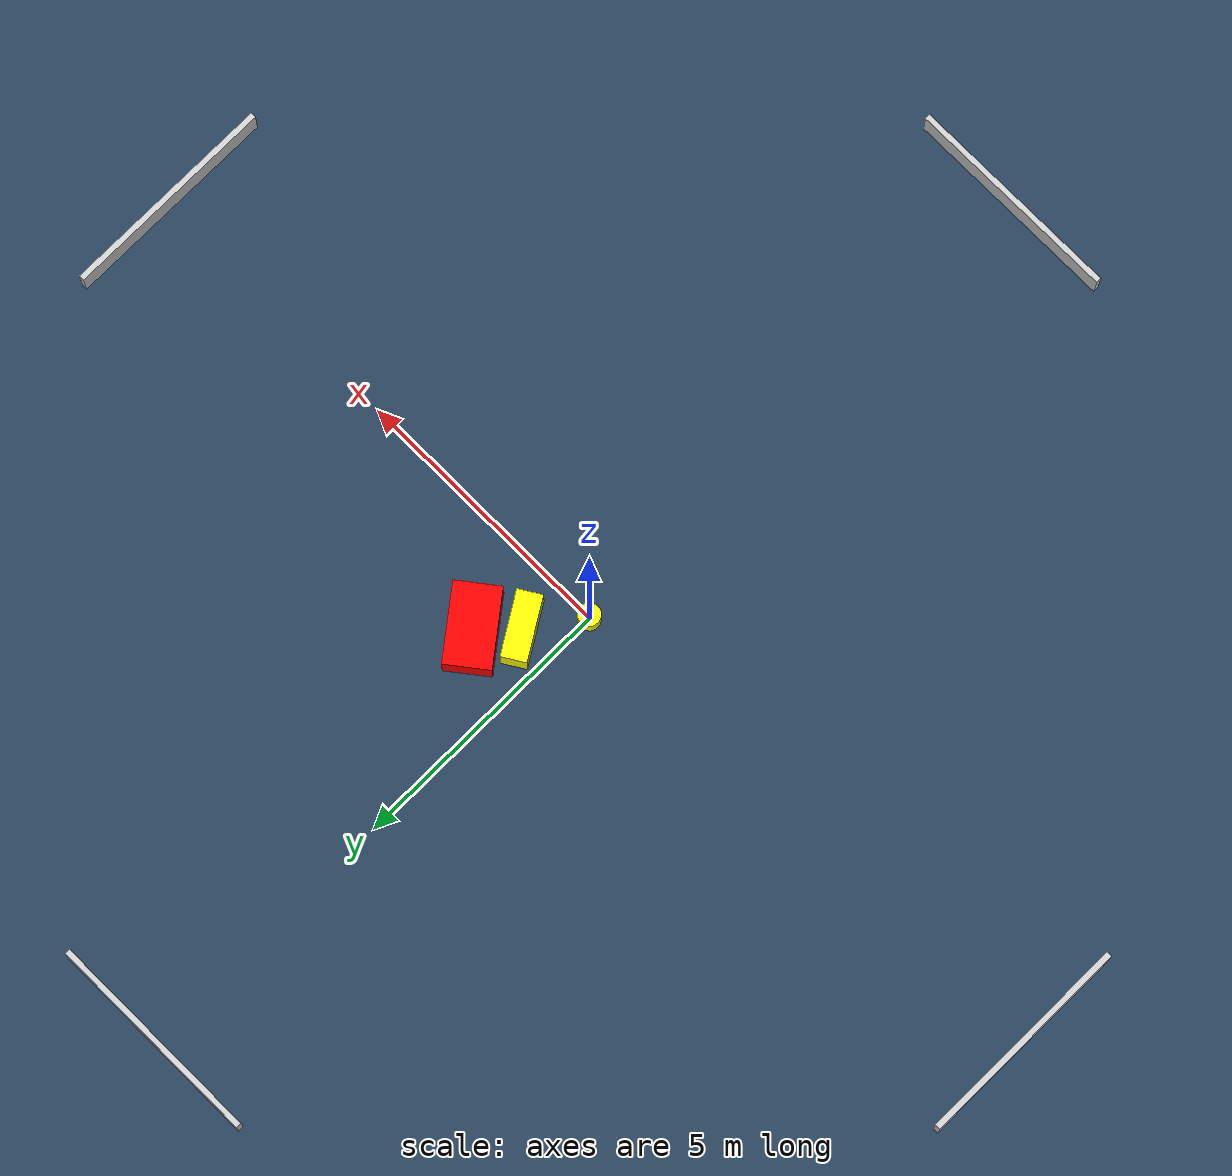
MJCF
<?xml version="1.0" ?>
<mujoco model="generated_environment">
  <option timestep="0.01" integrator="RK4" cone="elliptic"/>
  <default>
    <geom density="1"/>
  </default>
  <asset>
    <texture builtin="gradient" height="3072" name="skybox" rgb1="0.3 0.5 0.7" rgb2="0 0 0" type="skybox" width="512"/>
    <texture builtin="checker" height="300" name="groundplane" rgb1="0.2 0.3 0.4" rgb2="0.1 0.2 0.3" type="2d" width="300"/>
    <material name="groundplane" reflectance="0.2" texrepeat="5 5" texture="groundplane"/>
  </asset>
  <worldbody>
    <light dir="0 0 -1" directional="true" pos="0 0 1.5"/>
    <geom condim="3" friction="0.5 0.005 0.001" material="groundplane" name="floor" pos="0 0 0" size="0 0 0.05" type="plane"/>
    <body name="walls">
      <geom name="wall_1" condim="4" pos="-10.0 0.0 0.3" rgba="0.800000011920929 0.800000011920929 0.800000011920929 1.0" size="0.05 2.0 0.3" type="box"/>
      <geom name="wall_2" condim="4" pos="10.0 0.0 0.3" rgba="0.800000011920929 0.800000011920929 0.800000011920929 1.0" size="0.05 2.0 0.3" type="box"/>
      <geom name="wall_3" condim="4" pos="0.0 -10.0 0.3" rgba="0.800000011920929 0.800000011920929 0.800000011920929 1.0" size="2.0 0.05 0.3" type="box"/>
      <geom name="wall_4" condim="4" pos="0.0 10.0 0.3" rgba="0.800000011920929 0.800000011920929 0.800000011920929 1.0" size="2.0 0.05 0.3" type="box"/>
    </body>
    <body name="robot">
      <joint name="joint_x" type="slide" pos="0 0 0" axis="1 0 0"/>
      <joint name="joint_y" type="slide" pos="0 0 0" axis="0 1 0"/>
      <geom name="robot" type="cylinder" pos="0.0 0.0 0.2" size="0.2 0.2 0.0" mass="5.0" friction="1.0 0.005 0.0001" condim="4" rgba="1.0 1.0 0.0 1.0"/>
    </body>
    <body name="obstacle_1_movable">
      <geom name="obstacle_1_movable" condim="4" pos="0.6271267502278174 0.9469621575240349 0.3" euler="0 0 121.77066622929895" friction="0.0 0.005 0.001" rgba="1.0 1.0 0.0 1.0" size="0.5883803328849726 0.22885001604460348 0.3" type="box" mass="0.1"/>
      <joint type="free"/>
    </body>
    <body name="obstacle_2_static">
      <geom name="obstacle_2_static" condim="4" pos="1.2086857219888731 1.5179140862155949 0.3" euler="0 0 217.83275938351963" friction="0.0 0.005 0.001" rgba="1.0 0.0 0.0 1.0" size="0.4218899246131782 0.7135213218877237 0.3" type="box"/>
    </body>
  </worldbody>
  <actuator>
    <motor name="actuator_x" joint="joint_x" gear="1" ctrlrange="-1 1"/>
    <motor name="actuator_y" joint="joint_y" gear="1" ctrlrange="-1 1"/>
  </actuator>
</mujoco>
